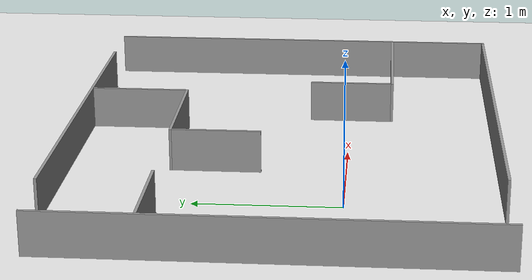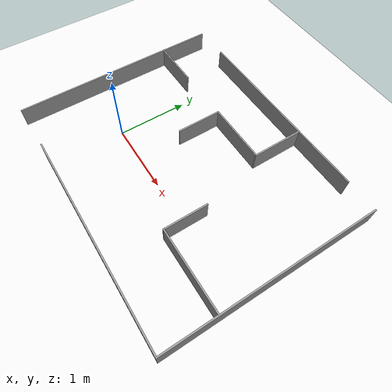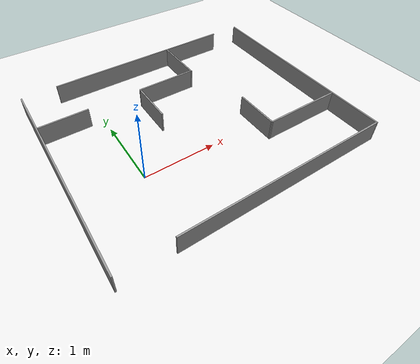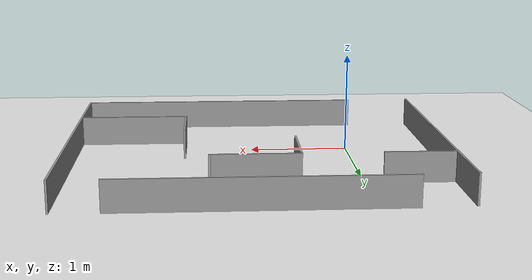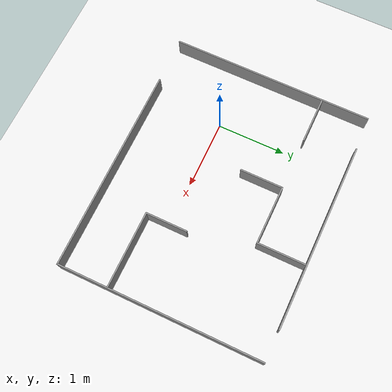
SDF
<sdf version="1.6">
 <world name="default">
  <light name="sun" type="directional">
   <pose>0 0 10 0 -0 0</pose>
   <diffuse>0.8 0.8 0.8 1</diffuse>
   <specular>0.2 0.2 0.2 1</specular>
   <attenuation>
    <range>1000</range>
    <constant>0.9</constant>
    <linear>0.01</linear>
    <quadratic>0.001</quadratic>
   </attenuation>
   <direction>-0.5 0.1 -0.9</direction>
  </light>
  <gravity>0 0 -9.8</gravity>
  <magnetic_field>6e-06 2.3e-05 -4.2e-05</magnetic_field>
  <atmosphere type="adiabatic"/>
  <physics name="default_physics" default="0" type="ode">
   <max_step_size>0.001</max_step_size>
   <real_time_factor>1</real_time_factor>
   <real_time_update_rate>1000</real_time_update_rate>
  </physics>
  <scene><ambient>0.4 0.4 0.4 1</ambient><background>0.7 0.7 0.7 1</background><shadows>1</shadows></scene>
  <spherical_coordinates>
   <surface_model>EARTH_WGS84</surface_model>
   <latitude_deg>0</latitude_deg>
   <longitude_deg>0</longitude_deg>
   <elevation>0</elevation>
   <heading_deg>0</heading_deg>
  </spherical_coordinates>
  <model name="maze">
   <pose>0.969725 0.435019 0 0 -0 0</pose>
   <link name="Wall_0">
    <collision name="Wall_0_Collision">
     <geometry><box><size>2.99 0.02 0.3</size></box></geometry>
     <pose>0 0 0.15 0 -0 0</pose>
    </collision>
    <visual name="Wall_0_Visual">
     <pose>0 0 0.15 0 -0 0</pose>
     <geometry><box><size>2.99 0.02 0.3</size></box></geometry>
     <material>
      <script><uri>file://media/materials/scripts/gazebo.material</uri><name>Gazebo/Grey</name></script>
      <ambient>1 1 1 1</ambient>
     </material>
     <meta><layer>0</layer></meta>
    </visual>
    <pose>-1.83874 -0.009599 0 0 -0 1.5708</pose>
   </link>
   <link name="Wall_11">
    <collision name="Wall_11_Collision">
     <geometry><box><size>0.72 0.02 0.3</size></box></geometry>
     <pose>0 0 0.15 0 -0 0</pose>
    </collision>
    <visual name="Wall_11_Visual">
     <pose>0 0 0.15 0 -0 0</pose>
     <geometry><box><size>0.72 0.02 0.3</size></box></geometry>
     <material>
      <script><uri>file://media/materials/scripts/gazebo.material</uri><name>Gazebo/Grey</name></script>
      <ambient>1 1 1 1</ambient>
     </material>
     <meta><layer>0</layer></meta>
    </visual>
    <pose>0.472633 1.1306 0 0 -0 1.5708</pose>
   </link>
   <link name="Wall_14">
    <collision name="Wall_14_Collision">
     <geometry><box><size>0.62 0.02 0.3</size></box></geometry>
     <pose>0 0 0.15 0 -0 0</pose>
    </collision>
    <visual name="Wall_14_Visual">
     <pose>0 0 0.15 0 -0 0</pose>
     <geometry><box><size>0.62 0.02 0.3</size></box></geometry>
     <material>
      <script><uri>file://media/materials/scripts/gazebo.material</uri><name>Gazebo/Grey</name></script>
      <ambient>1 1 1 1</ambient>
     </material>
     <meta><layer>0</layer></meta>
    </visual>
    <pose>-0.37865 0.463317 0 0 -0 -1.5708</pose>
   </link>
   <link name="Wall_16">
    <collision name="Wall_16_Collision">
     <geometry><box><size>2.99 0.02 0.3</size></box></geometry>
     <pose>0 0 0.15 0 -0 0</pose>
    </collision>
    <visual name="Wall_16_Visual">
     <pose>0 0 0.15 0 -0 0</pose>
     <geometry><box><size>2.99 0.02 0.3</size></box></geometry>
     <material>
      <script><uri>file://media/materials/scripts/gazebo.material</uri><name>Gazebo/Grey</name></script>
      <ambient>1 1 1 1</ambient>
     </material>
     <meta><layer>0</layer></meta>
    </visual>
    <pose>0.339633 -1.4804 0 0 -0 3.14159</pose>
   </link>
   <link name="Wall_18">
    <collision name="Wall_18_Collision">
     <geometry><box><size>1.12 0.02 0.3</size></box></geometry>
     <pose>0 0 0.15 0 -0 0</pose>
    </collision>
    <visual name="Wall_18_Visual">
     <pose>0 0 0.15 0 -0 0</pose>
     <geometry><box><size>1.12 0.02 0.3</size></box></geometry>
     <material>
      <script><uri>file://media/materials/scripts/gazebo.material</uri><name>Gazebo/Grey</name></script>
      <ambient>1 1 1 1</ambient>
     </material>
     <meta><layer>0</layer></meta>
    </visual>
    <pose>1.27463 -0.7414 0 0 -0 3.14159</pose>
   </link>
   <link name="Wall_2">
    <collision name="Wall_2_Collision">
     <geometry><box><size>0.69 0.02 0.3</size></box></geometry>
     <pose>0 0 0.15 0 -0 0</pose>
    </collision>
    <visual name="Wall_2_Visual">
     <pose>0 0 0.15 0 -0 0</pose>
     <geometry><box><size>0.69 0.02 0.3</size></box></geometry>
     <material>
      <script><uri>file://media/materials/scripts/gazebo.material</uri><name>Gazebo/Grey</name></script>
      <ambient>1 1 1 1</ambient>
     </material>
     <meta><layer>0</layer></meta>
    </visual>
    <pose>-1.49337 0.7766 0 0 -0 0</pose>
   </link>
   <link name="Wall_20">
    <collision name="Wall_20_Collision">
     <geometry><box><size>0.62 0.02 0.3</size></box></geometry>
     <pose>0 0 0.15 0 -0 0</pose>
    </collision>
    <visual name="Wall_20_Visual">
     <pose>0 0 0.15 0 -0 0</pose>
     <geometry><box><size>0.62 0.02 0.3</size></box></geometry>
     <material>
      <script><uri>file://media/materials/scripts/gazebo.material</uri><name>Gazebo/Grey</name></script>
      <ambient>1 1 1 1</ambient>
     </material>
     <meta><layer>0</layer></meta>
    </visual>
    <pose>0.724633 -0.4414 0 0 -0 1.5708</pose>
   </link>
   <link name="Wall_4">
    <collision name="Wall_4_Collision">
     <geometry><box><size>2.74 0.02 0.3</size></box></geometry>
     <pose>0 0 0.15 0 -0 0</pose>
    </collision>
    <visual name="Wall_4_Visual">
     <pose>0 0 0.15 0 -0 0</pose>
     <geometry><box><size>2.74 0.02 0.3</size></box></geometry>
     <material>
      <script><uri>file://media/materials/scripts/gazebo.material</uri><name>Gazebo/Grey</name></script>
      <ambient>1 1 1 1</ambient>
     </material>
     <meta><layer>0</layer></meta>
    </visual>
    <pose>0.025633 1.4946 0 0 -0 0</pose>
   </link>
   <link name="Wall_6">
    <collision name="Wall_6_Collision">
     <geometry><box><size>2.99 0.02 0.3</size></box></geometry>
     <pose>0 0 0.15 0 -0 0</pose>
    </collision>
    <visual name="Wall_6_Visual">
     <pose>0 0 0.15 0 -0 0</pose>
     <geometry><box><size>2.99 0.02 0.3</size></box></geometry>
     <material>
      <script><uri>file://media/materials/scripts/gazebo.material</uri><name>Gazebo/Grey</name></script>
      <ambient>1 1 1 1</ambient>
     </material>
     <meta><layer>0</layer></meta>
    </visual>
    <pose>1.83874 0.004271 0 0 -0 -1.5708</pose>
   </link>
   <link name="Wall_9">
    <collision name="Wall_9_Collision">
     <geometry><box><size>0.87 0.02 0.3</size></box></geometry>
     <pose>0 0 0.15 0 -0 0</pose>
    </collision>
    <visual name="Wall_9_Visual">
     <pose>0 0 0.15 0 -0 0</pose>
     <geometry><box><size>0.87 0.02 0.3</size></box></geometry>
     <material>
      <script><uri>file://media/materials/scripts/gazebo.material</uri><name>Gazebo/Grey</name></script>
      <ambient>1 1 1 1</ambient>
     </material>
     <meta><layer>0</layer></meta>
    </visual>
    <pose>0.047633 0.7806 0 0 -0 0</pose>
   </link>
   <static>1</static>
  </model>
  <model name="ground_plane">
   <static>1</static>
   <link name="link">
    <collision name="collision">
     <geometry><plane><normal>0 0 1</normal><size>100 100</size></plane></geometry>
     <surface><friction><ode><mu>100</mu><mu2>50</mu2></ode></friction></surface>
    </collision>
    <visual name="visual">
     <cast_shadows>0</cast_shadows>
     <geometry><plane><normal>0 0 1</normal><size>100 100</size></plane></geometry>
     <material>
      <script><uri>file://media/materials/scripts/gazebo.material</uri><name>Gazebo/White</name></script>
     </material>
    </visual>
   </link>
   <pose>1.69486 -1.61345 0 0 -0 0</pose>
  </model>
 </world>
</sdf>
